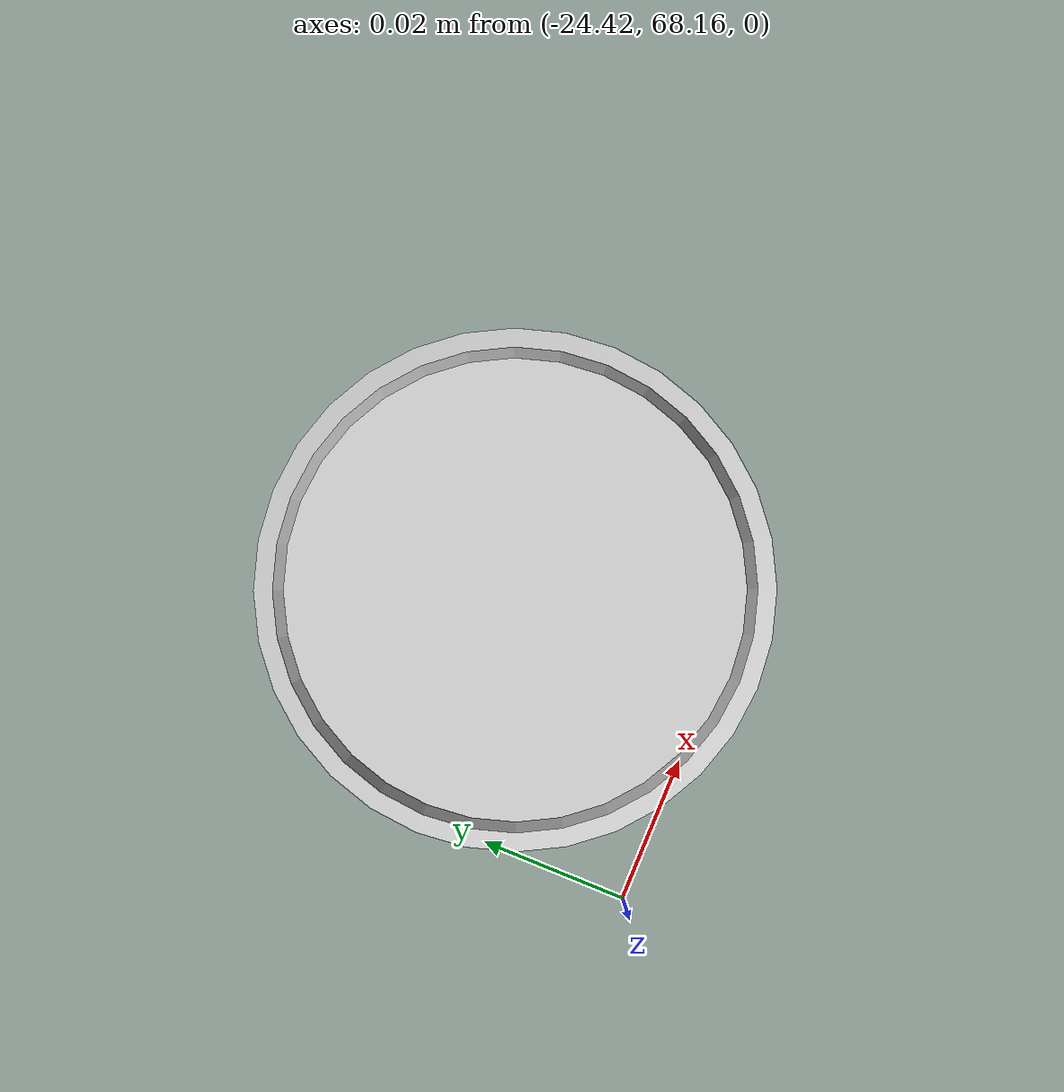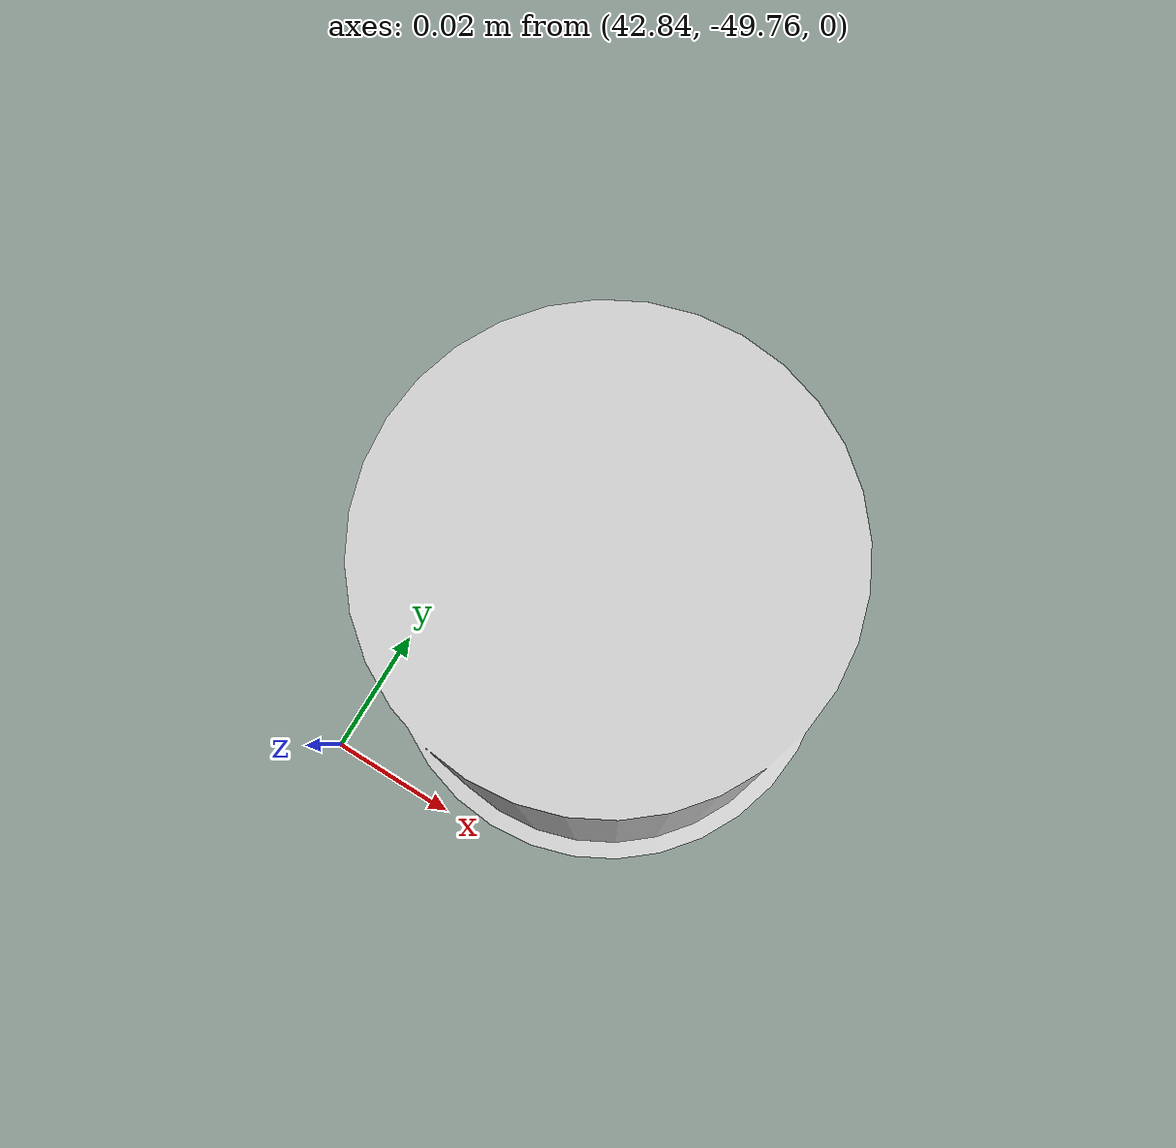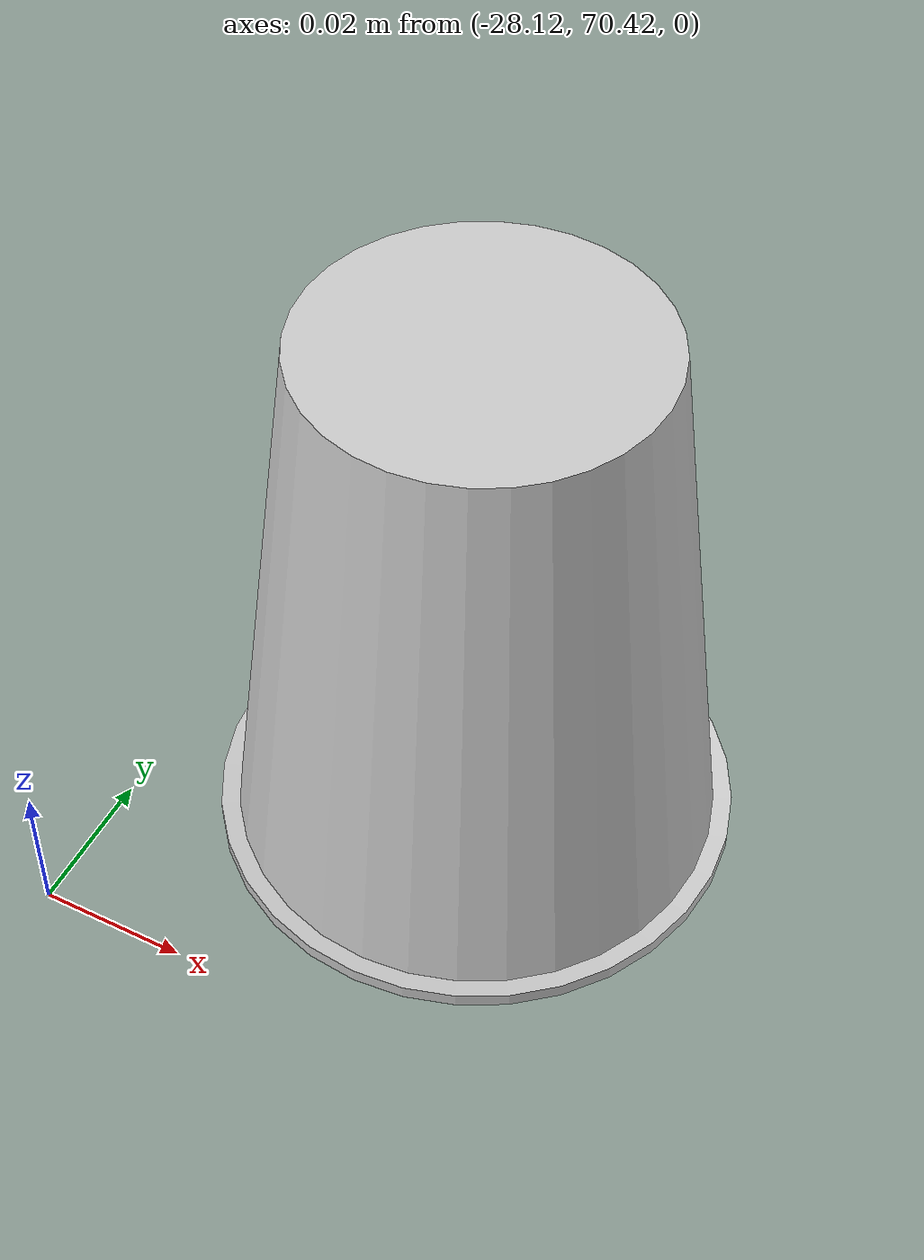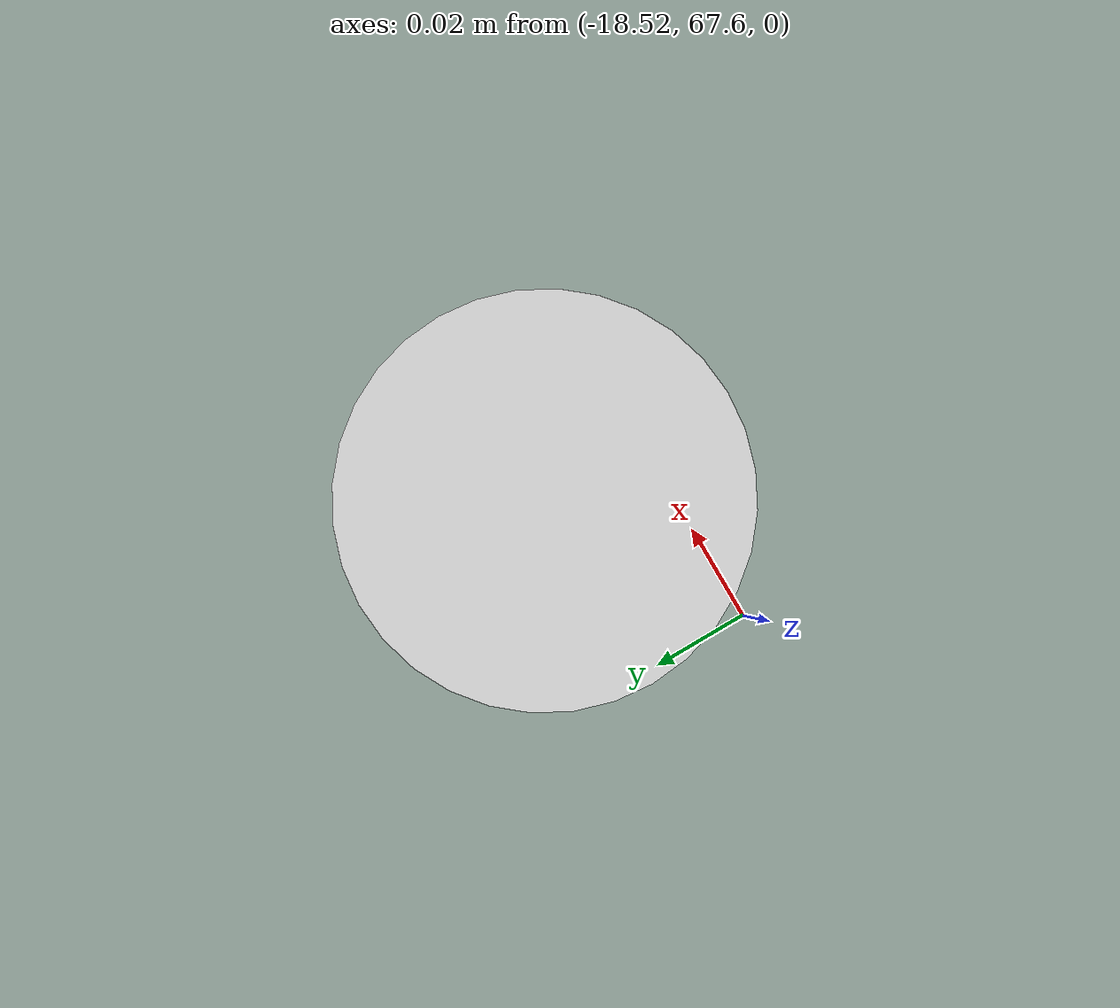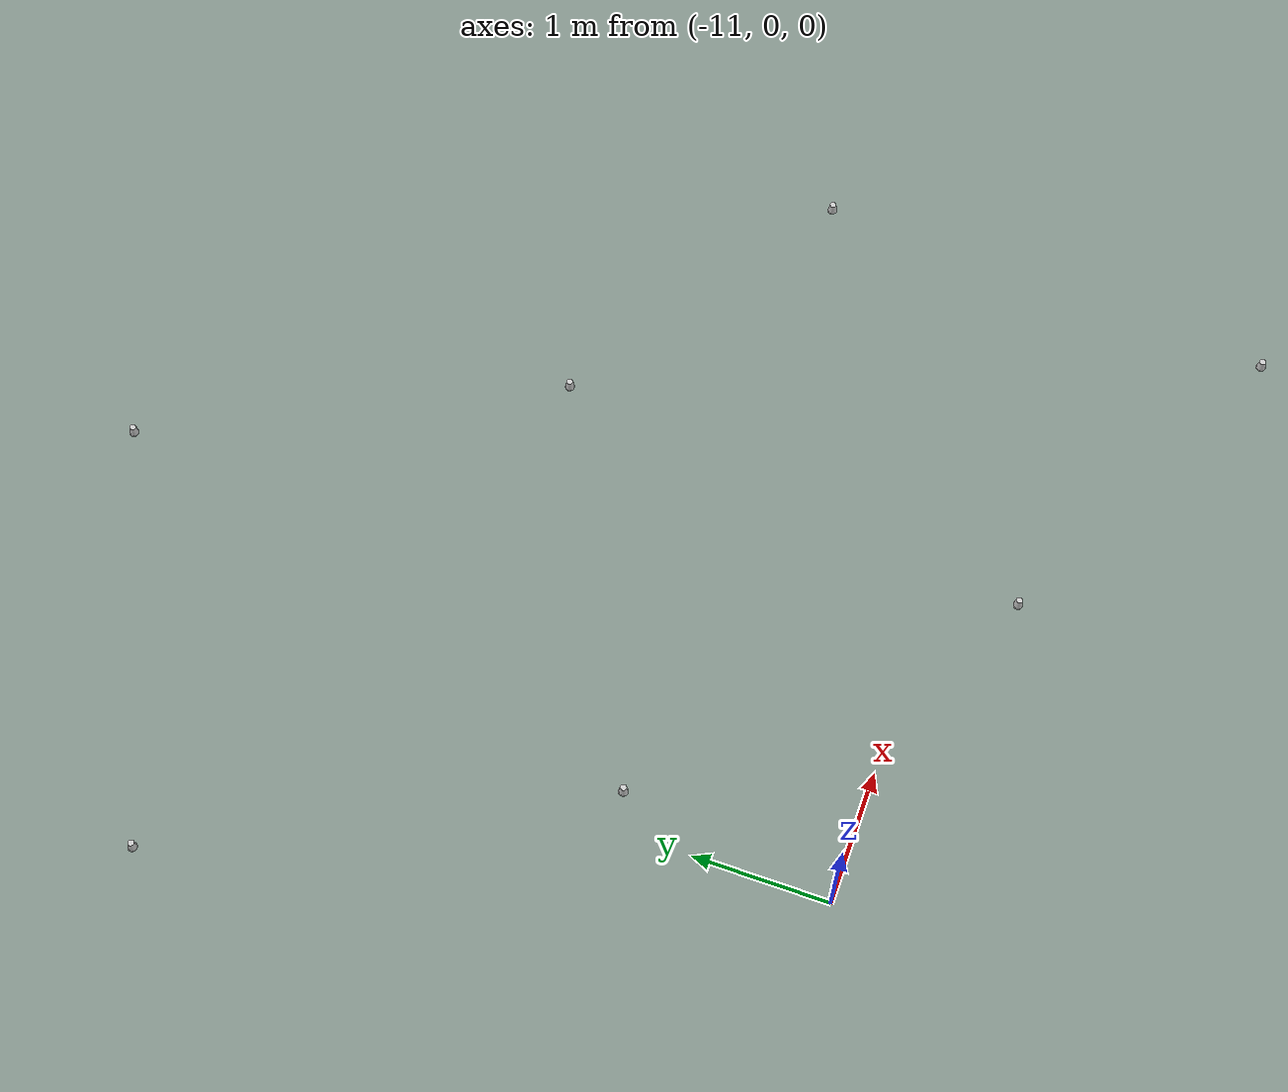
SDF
<?xml version='1.0' encoding='UTF-8'?>
<sdf version="1.4">
  <model name="some track">
    <include>
      <uri>model://cone_yellow</uri>
      <pose>3.3622384025859 -1.5132074425365554 0 0 0 0</pose>
      <name>cone_right</name>
    </include>
    <include>
      <uri>model://cone_yellow</uri>
      <pose>6.259250597664582 -2.1532482217214026 0 0 0 0</pose>
      <name>cone_right</name>
    </include>
    <include>
      <uri>model://cone_yellow</uri>
      <pose>8.647164237749518 -3.622865773240207 0 0 0 0</pose>
      <name>cone_right</name>
    </include>
    <include>
      <uri>model://cone_yellow</uri>
      <pose>10.292037603150265 -5.812961890619617 0 0 0 0</pose>
      <name>cone_right</name>
    </include>
    <include>
      <uri>model://cone_yellow</uri>
      <pose>11.259022733309902 -8.471162597410538 0 0 0 0</pose>
      <name>cone_right</name>
    </include>
    <include>
      <uri>model://cone_yellow</uri>
      <pose>12.039526715535647 -11.528677810046746 0 0 0 0</pose>
      <name>cone_right</name>
    </include>
    <include>
      <uri>model://cone_yellow</uri>
      <pose>13.237308390396118 -14.78168593250153 0 0 0 0</pose>
      <name>cone_right</name>
    </include>
    <include>
      <uri>model://cone_yellow</uri>
      <pose>15.469694142120082 -17.858044309962725 0 0 0 0</pose>
      <name>cone_right</name>
    </include>
    <include>
      <uri>model://cone_yellow</uri>
      <pose>18.478466811821782 -20.160987081926084 0 0 0 0</pose>
      <name>cone_right</name>
    </include>
    <include>
      <uri>model://cone_yellow</uri>
      <pose>21.44662354575577 -21.959542022923166 0 0 0 0</pose>
      <name>cone_right</name>
    </include>
    <include>
      <uri>model://cone_yellow</uri>
      <pose>23.615674799504887 -24.042856306092137 0 0 0 0</pose>
      <name>cone_right</name>
    </include>
    <include>
      <uri>model://cone_yellow</uri>
      <pose>25.02768524735859 -26.543339647057486 0 0 0 0</pose>
      <name>cone_right</name>
    </include>
    <include>
      <uri>model://cone_yellow</uri>
      <pose>25.738297767753505 -29.35910991662206 0 0 0 0</pose>
      <name>cone_right</name>
    </include>
    <include>
      <uri>model://cone_yellow</uri>
      <pose>26.010932183008247 -32.39570680692608 0 0 0 0</pose>
      <name>cone_right</name>
    </include>
    <include>
      <uri>model://cone_yellow</uri>
      <pose>26.110958581319657 -35.598014532142685 0 0 0 0</pose>
      <name>cone_right</name>
    </include>
    <include>
      <uri>model://cone_yellow</uri>
      <pose>26.396331250662115 -39.04045762697147 0 0 0 0</pose>
      <name>cone_right</name>
    </include>
    <include>
      <uri>model://cone_yellow</uri>
      <pose>27.214775026081707 -42.5556245915364 0 0 0 0</pose>
      <name>cone_right</name>
    </include>
    <include>
      <uri>model://cone_yellow</uri>
      <pose>28.91944271463657 -45.85485545053161 0 0 0 0</pose>
      <name>cone_right</name>
    </include>
    <include>
      <uri>model://cone_yellow</uri>
      <pose>31.689100223815803 -48.55489649330053 0 0 0 0</pose>
      <name>cone_right</name>
    </include>
    <include>
      <uri>model://cone_yellow</uri>
      <pose>35.168347937387104 -50.25675119563339 0 0 0 0</pose>
      <name>cone_right</name>
    </include>
    <include>
      <uri>model://cone_yellow</uri>
      <pose>39.0183194124379 -50.72897628823628 0 0 0 0</pose>
      <name>cone_right</name>
    </include>
    <include>
      <uri>model://cone_yellow</uri>
      <pose>42.86729069564972 -49.72292342025071 0 0 0 0</pose>
      <name>cone_right</name>
    </include>
    <include>
      <uri>model://cone_yellow</uri>
      <pose>46.02132421499899 -47.324481677397735 0 0 0 0</pose>
      <name>cone_right</name>
    </include>
    <include>
      <uri>model://cone_yellow</uri>
      <pose>47.97121924507955 -43.88973676657605 0 0 0 0</pose>
      <name>cone_right</name>
    </include>
    <include>
      <uri>model://cone_yellow</uri>
      <pose>48.89364683701833 -40.199833036367146 0 0 0 0</pose>
      <name>cone_right</name>
    </include>
    <include>
      <uri>model://cone_yellow</uri>
      <pose>49.30471824391967 -36.69611960060458 0 0 0 0</pose>
      <name>cone_right</name>
    </include>
    <include>
      <uri>model://cone_yellow</uri>
      <pose>49.35455220864314 -33.22598747523137 0 0 0 0</pose>
      <name>cone_right</name>
    </include>
    <include>
      <uri>model://cone_yellow</uri>
      <pose>49.000485433380305 -29.71099484779388 0 0 0 0</pose>
      <name>cone_right</name>
    </include>
    <include>
      <uri>model://cone_yellow</uri>
      <pose>47.856703925873894 -26.219419465615598 0 0 0 0</pose>
      <name>cone_right</name>
    </include>
    <include>
      <uri>model://cone_yellow</uri>
      <pose>45.556977241196144 -23.097542280730796 0 0 0 0</pose>
      <name>cone_right</name>
    </include>
    <include>
      <uri>model://cone_yellow</uri>
      <pose>42.47639430160405 -20.821973684526835 0 0 0 0</pose>
      <name>cone_right</name>
    </include>
    <include>
      <uri>model://cone_yellow</uri>
      <pose>39.057238338443824 -19.41061482996617 0 0 0 0</pose>
      <name>cone_right</name>
    </include>
    <include>
      <uri>model://cone_yellow</uri>
      <pose>35.756141015721866 -18.370227167060534 0 0 0 0</pose>
      <name>cone_right</name>
    </include>
    <include>
      <uri>model://cone_yellow</uri>
      <pose>32.89210592125593 -17.11120940131093 0 0 0 0</pose>
      <name>cone_right</name>
    </include>
    <include>
      <uri>model://cone_yellow</uri>
      <pose>30.44830629390956 -15.376089345329568 0 0 0 0</pose>
      <name>cone_right</name>
    </include>
    <include>
      <uri>model://cone_yellow</uri>
      <pose>27.772197206819527 -13.446500464478701 0 0 0 0</pose>
      <name>cone_right</name>
    </include>
    <include>
      <uri>model://cone_yellow</uri>
      <pose>24.984858975055747 -11.561737595805646 0 0 0 0</pose>
      <name>cone_right</name>
    </include>
    <include>
      <uri>model://cone_yellow</uri>
      <pose>22.658284238531103 -9.49426391543626 0 0 0 0</pose>
      <name>cone_right</name>
    </include>
    <include>
      <uri>model://cone_yellow</uri>
      <pose>20.895628540062223 -7.083613817129443 0 0 0 0</pose>
      <name>cone_right</name>
    </include>
    <include>
      <uri>model://cone_yellow</uri>
      <pose>19.51449016129218 -4.348439999004061 0 0 0 0</pose>
      <name>cone_right</name>
    </include>
    <include>
      <uri>model://cone_yellow</uri>
      <pose>18.394409241640528 -1.4248643136592714 0 0 0 0</pose>
      <name>cone_right</name>
    </include>
    <include>
      <uri>model://cone_yellow</uri>
      <pose>17.51350906490978 1.6256945100738485 0 0 0 0</pose>
      <name>cone_right</name>
    </include>
    <include>
      <uri>model://cone_yellow</uri>
      <pose>16.81545647996961 4.841490917194193 0 0 0 0</pose>
      <name>cone_right</name>
    </include>
    <include>
      <uri>model://cone_yellow</uri>
      <pose>15.86375825838629 8.166313627358802 0 0 0 0</pose>
      <name>cone_right</name>
    </include>
    <include>
      <uri>model://cone_yellow</uri>
      <pose>10.600337189464106 13.56887888771917 0 0 0 0</pose>
      <name>cone_right</name>
    </include>
    <include>
      <uri>model://cone_yellow</uri>
      <pose>7.032211498434359 14.95143794806469 0 0 0 0</pose>
      <name>cone_right</name>
    </include>
    <include>
      <uri>model://cone_yellow</uri>
      <pose>3.5390231181158427 15.71886155560296 0 0 0 0</pose>
      <name>cone_right</name>
    </include>
    <include>
      <uri>model://cone_yellow</uri>
      <pose>0.06735392538790623 16.04662453158276 0 0 0 0</pose>
      <name>cone_right</name>
    </include>
    <include>
      <uri>model://cone_yellow</uri>
      <pose>-3.3387380073609365 16.169138480514352 0 0 0 0</pose>
      <name>cone_right</name>
    </include>
    <include>
      <uri>model://cone_yellow</uri>
      <pose>-6.489748937029006 16.571151393596477 0 0 0 0</pose>
      <name>cone_right</name>
    </include>
    <include>
      <uri>model://cone_yellow</uri>
      <pose>-9.301134813587538 17.6028480861761 0 0 0 0</pose>
      <name>cone_right</name>
    </include>
    <include>
      <uri>model://cone_yellow</uri>
      <pose>-11.652063725274067 19.398773907626992 0 0 0 0</pose>
      <name>cone_right</name>
    </include>
    <include>
      <uri>model://cone_yellow</uri>
      <pose>-13.190582215300047 21.74615433746484 0 0 0 0</pose>
      <name>cone_right</name>
    </include>
    <include>
      <uri>model://cone_yellow</uri>
      <pose>-13.672558157100381 24.361726381123507 0 0 0 0</pose>
      <name>cone_right</name>
    </include>
    <include>
      <uri>model://cone_yellow</uri>
      <pose>-13.775586413715082 27.44689955864186 0 0 0 0</pose>
      <name>cone_right</name>
    </include>
    <include>
      <uri>model://cone_yellow</uri>
      <pose>-13.97752302505224 30.841168514625277 0 0 0 0</pose>
      <name>cone_right</name>
    </include>
    <include>
      <uri>model://cone_yellow</uri>
      <pose>-14.01997881656977 34.066368930707924 0 0 0 0</pose>
      <name>cone_right</name>
    </include>
    <include>
      <uri>model://cone_yellow</uri>
      <pose>-13.520623555645358 37.009068722358215 0 0 0 0</pose>
      <name>cone_right</name>
    </include>
    <include>
      <uri>model://cone_yellow</uri>
      <pose>-12.503711025104177 39.88910522184116 0 0 0 0</pose>
      <name>cone_right</name>
    </include>
    <include>
      <uri>model://cone_yellow</uri>
      <pose>-11.247183493568029 42.88076941030616 0 0 0 0</pose>
      <name>cone_right</name>
    </include>
    <include>
      <uri>model://cone_yellow</uri>
      <pose>-9.985531016541035 45.96125798477672 0 0 0 0</pose>
      <name>cone_right</name>
    </include>
    <include>
      <uri>model://cone_yellow</uri>
      <pose>-8.840750235903718 49.143066309419595 0 0 0 0</pose>
      <name>cone_right</name>
    </include>
    <include>
      <uri>model://cone_yellow</uri>
      <pose>-7.933595363653804 52.484039684658406 0 0 0 0</pose>
      <name>cone_right</name>
    </include>
    <include>
      <uri>model://cone_yellow</uri>
      <pose>-7.472469614740918 56.00738966560034 0 0 0 0</pose>
      <name>cone_right</name>
    </include>
    <include>
      <uri>model://cone_yellow</uri>
      <pose>-7.707498163434575 59.68809022912594 0 0 0 0</pose>
      <name>cone_right</name>
    </include>
    <include>
      <uri>model://cone_yellow</uri>
      <pose>-8.7963066570658 63.28929379975951 0 0 0 0</pose>
      <name>cone_right</name>
    </include>
    <include>
      <uri>model://cone_yellow</uri>
      <pose>-10.805227133688144 66.47619942409686 0 0 0 0</pose>
      <name>cone_right</name>
    </include>
    <include>
      <uri>model://cone_yellow</uri>
      <pose>-13.71487251309787 68.94759307421472 0 0 0 0</pose>
      <name>cone_right</name>
    </include>
    <include>
      <uri>model://cone_yellow</uri>
      <pose>-17.12364269594156 70.57701022400796 0 0 0 0</pose>
      <name>cone_right</name>
    </include>
    <include>
      <uri>model://cone_yellow</uri>
      <pose>-20.713244595924337 71.42945408777881 0 0 0 0</pose>
      <name>cone_right</name>
    </include>
    <include>
      <uri>model://cone_yellow</uri>
      <pose>-24.41718637158855 71.4389720314702 0 0 0 0</pose>
      <name>cone_right</name>
    </include>
    <include>
      <uri>model://cone_yellow</uri>
      <pose>-28.077720673551866 70.46198934781054 0 0 0 0</pose>
      <name>cone_right</name>
    </include>
    <include>
      <uri>model://cone_yellow</uri>
      <pose>-31.31522551014879 68.45849708095577 0 0 0 0</pose>
      <name>cone_right</name>
    </include>
    <include>
      <uri>model://cone_yellow</uri>
      <pose>-33.781877207946295 65.5051184189308 0 0 0 0</pose>
      <name>cone_right</name>
    </include>
    <include>
      <uri>model://cone_yellow</uri>
      <pose>-35.363632749064884 62.05671840972439 0 0 0 0</pose>
      <name>cone_right</name>
    </include>
    <include>
      <uri>model://cone_yellow</uri>
      <pose>-36.174728246150465 58.47848237610591 0 0 0 0</pose>
      <name>cone_right</name>
    </include>
    <include>
      <uri>model://cone_yellow</uri>
      <pose>-36.27282627962357 54.83772238248714 0 0 0 0</pose>
      <name>cone_right</name>
    </include>
    <include>
      <uri>model://cone_yellow</uri>
      <pose>-35.640560733761674 51.20403641504244 0 0 0 0</pose>
      <name>cone_right</name>
    </include>
    <include>
      <uri>model://cone_yellow</uri>
      <pose>-34.18350962070657 47.79476881089 0 0 0 0</pose>
      <name>cone_right</name>
    </include>
    <include>
      <uri>model://cone_yellow</uri>
      <pose>-31.850397946625105 44.8744514030496 0 0 0 0</pose>
      <name>cone_right</name>
    </include>
    <include>
      <uri>model://cone_yellow</uri>
      <pose>-29.380889305628227 42.40542332825412 0 0 0 0</pose>
      <name>cone_right</name>
    </include>
    <include>
      <uri>model://cone_yellow</uri>
      <pose>-27.48931105256917 39.94337945696528 0 0 0 0</pose>
      <name>cone_right</name>
    </include>
    <include>
      <uri>model://cone_yellow</uri>
      <pose>-25.976989819498147 37.237669809606885 0 0 0 0</pose>
      <name>cone_right</name>
    </include>
    <include>
      <uri>model://cone_yellow</uri>
      <pose>-24.68594859792965 34.31816490505151 0 0 0 0</pose>
      <name>cone_right</name>
    </include>
    <include>
      <uri>model://cone_yellow</uri>
      <pose>-23.731979448347218 31.32048696920326 0 0 0 0</pose>
      <name>cone_right</name>
    </include>
    <include>
      <uri>model://cone_yellow</uri>
      <pose>-23.234546517448678 28.30962026830404 0 0 0 0</pose>
      <name>cone_right</name>
    </include>
    <include>
      <uri>model://cone_yellow</uri>
      <pose>-23.002557095766914 25.166103672426523 0 0 0 0</pose>
      <name>cone_right</name>
    </include>
    <include>
      <uri>model://cone_yellow</uri>
      <pose>-22.665907876363747 21.78039574482926 0 0 0 0</pose>
      <name>cone_right</name>
    </include>
    <include>
      <uri>model://cone_yellow</uri>
      <pose>-21.868134855880633 18.25262460072993 0 0 0 0</pose>
      <name>cone_right</name>
    </include>
    <include>
      <uri>model://cone_yellow</uri>
      <pose>-20.334038256388503 14.912566385034198 0 0 0 0</pose>
      <name>cone_right</name>
    </include>
    <include>
      <uri>model://cone_yellow</uri>
      <pose>-17.826953576286378 12.089190820506047 0 0 0 0</pose>
      <name>cone_right</name>
    </include>
    <include>
      <uri>model://cone_yellow</uri>
      <pose>-15.162596001065072 9.789017109934537 0 0 0 0</pose>
      <name>cone_right</name>
    </include>
    <include>
      <uri>model://cone_yellow</uri>
      <pose>-13.458822712983375 7.415565854776381 0 0 0 0</pose>
      <name>cone_right</name>
    </include>
    <include>
      <uri>model://cone_yellow</uri>
      <pose>-12.243618565709454 4.635472775655098 0 0 0 0</pose>
      <name>cone_right</name>
    </include>
    <include>
      <uri>model://cone_yellow</uri>
      <pose>-10.71662562829155 1.6027465864021502 0 0 0 0</pose>
      <name>cone_right</name>
    </include>
    <include>
      <uri>model://cone_yellow</uri>
      <pose>13.81272622916488 11.409046766493056 0 0 0 0</pose>
      <name>cone_right</name>
    </include>
    <include>
      <uri>model://cone_yellow</uri>
      <pose>-3.1659267008400533 -1.7666543914025397 0 0 0 0</pose>
      <name>cone_right</name>
    </include>
    <include>
      <uri>model://cone_yellow</uri>
      <pose>-8.41012653588632 -0.5837521729710531 0 0 0 0</pose>
      <name>cone_right</name>
    </include>
    <include>
      <uri>model://cone_yellow</uri>
      <pose>-5.88660180323248 -1.7666543914025397 0 0 0 0</pose>
      <name>cone_right</name>
    </include>
    <include>
      <uri>model://cone_blue</uri>
      <pose>3.2533566230468307 1.7349681620273985 0 0 0 0</pose>
      <name>cone_left</name>
    </include>
    <include>
      <uri>model://cone_blue</uri>
      <pose>6.912194672484337 1.0304860691951263 0 0 0 0</pose>
      <name>cone_left</name>
    </include>
    <include>
      <uri>model://cone_blue</uri>
      <pose>10.26842924042257 -0.8061301109695078 0 0 0 0</pose>
      <name>cone_left</name>
    </include>
    <include>
      <uri>model://cone_blue</uri>
      <pose>12.812367862044466 -3.7610273433929566 0 0 0 0</pose>
      <name>cone_left</name>
    </include>
    <include>
      <uri>model://cone_blue</uri>
      <pose>14.282173172481034 -7.278241216036481 0 0 0 0</pose>
      <name>cone_left</name>
    </include>
    <include>
      <uri>model://cone_blue</uri>
      <pose>15.18543985416387 -10.712754698346684 0 0 0 0</pose>
      <name>cone_left</name>
    </include>
    <include>
      <uri>model://cone_blue</uri>
      <pose>16.284419667046915 -13.651370548324374 0 0 0 0</pose>
      <name>cone_left</name>
    </include>
    <include>
      <uri>model://cone_blue</uri>
      <pose>18.065507131820993 -15.902474080464433 0 0 0 0</pose>
      <name>cone_left</name>
    </include>
    <include>
      <uri>model://cone_blue</uri>
      <pose>20.407375048132266 -17.545301126790495 0 0 0 0</pose>
      <name>cone_left</name>
    </include>
    <include>
      <uri>model://cone_blue</uri>
      <pose>23.125295768920424 -19.176637143633286 0 0 0 0</pose>
      <name>cone_left</name>
    </include>
    <include>
      <uri>model://cone_blue</uri>
      <pose>25.838855181858072 -21.6722089287878 0 0 0 0</pose>
      <name>cone_left</name>
    </include>
    <include>
      <uri>model://cone_blue</uri>
      <pose>27.82142851181967 -24.882767886404437 0 0 0 0</pose>
      <name>cone_left</name>
    </include>
    <include>
      <uri>model://cone_blue</uri>
      <pose>28.87286043534073 -28.500613042446936 0 0 0 0</pose>
      <name>cone_left</name>
    </include>
    <include>
      <uri>model://cone_blue</uri>
      <pose>29.24558069529353 -32.08019293722996 0 0 0 0</pose>
      <name>cone_left</name>
    </include>
    <include>
      <uri>model://cone_blue</uri>
      <pose>29.35926394231648 -35.493075112860495 0 0 0 0</pose>
      <name>cone_left</name>
    </include>
    <include>
      <uri>model://cone_blue</uri>
      <pose>29.635056260674354 -38.76997600186319 0 0 0 0</pose>
      <name>cone_left</name>
    </include>
    <include>
      <uri>model://cone_blue</uri>
      <pose>30.376316495723035 -41.80252729653519 0 0 0 0</pose>
      <name>cone_left</name>
    </include>
    <include>
      <uri>model://cone_blue</uri>
      <pose>31.784982249486976 -44.32149861854196 0 0 0 0</pose>
      <name>cone_left</name>
    </include>
    <include>
      <uri>model://cone_blue</uri>
      <pose>33.90462940084386 -46.17709699255674 0 0 0 0</pose>
      <name>cone_left</name>
    </include>
    <include>
      <uri>model://cone_blue</uri>
      <pose>36.53545567378678 -47.30827422657358 0 0 0 0</pose>
      <name>cone_left</name>
    </include>
    <include>
      <uri>model://cone_blue</uri>
      <pose>39.33854686236939 -47.494791015202225 0 0 0 0</pose>
      <name>cone_left</name>
    </include>
    <include>
      <uri>model://cone_blue</uri>
      <pose>41.95217814212196 -46.604419129027775 0 0 0 0</pose>
      <name>cone_left</name>
    </include>
    <include>
      <uri>model://cone_blue</uri>
      <pose>43.97275746421602 -44.80141325430919 0 0 0 0</pose>
      <name>cone_left</name>
    </include>
    <include>
      <uri>model://cone_blue</uri>
      <pose>45.09283087617224 -42.380637565814496 0 0 0 0</pose>
      <name>cone_left</name>
    </include>
    <include>
      <uri>model://cone_blue</uri>
      <pose>45.73037682630787 -39.45402955062857 0 0 0 0</pose>
      <name>cone_left</name>
    </include>
    <include>
      <uri>model://cone_blue</uri>
      <pose>46.07566257354333 -36.32774550052367 0 0 0 0</pose>
      <name>cone_left</name>
    </include>
    <include>
      <uri>model://cone_blue</uri>
      <pose>46.10478398809592 -33.18717365396483 0 0 0 0</pose>
      <name>cone_left</name>
    </include>
    <include>
      <uri>model://cone_blue</uri>
      <pose>45.76786082179848 -30.046610879287424 0 0 0 0</pose>
      <name>cone_left</name>
    </include>
    <include>
      <uri>model://cone_blue</uri>
      <pose>44.77958362706085 -27.265283064099027 0 0 0 0</pose>
      <name>cone_left</name>
    </include>
    <include>
      <uri>model://cone_blue</uri>
      <pose>42.98452424263521 -25.08374105482036 0 0 0 0</pose>
      <name>cone_left</name>
    </include>
    <include>
      <uri>model://cone_blue</uri>
      <pose>40.59377372827446 -23.47116974689673 0 0 0 0</pose>
      <name>cone_left</name>
    </include>
    <include>
      <uri>model://cone_blue</uri>
      <pose>37.85474933958962 -22.429972411908828 0 0 0 0</pose>
      <name>cone_left</name>
    </include>
    <include>
      <uri>model://cone_blue</uri>
      <pose>34.78332031335316 -21.471214087549377 0 0 0 0</pose>
      <name>cone_left</name>
    </include>
    <include>
      <uri>model://cone_blue</uri>
      <pose>31.59308935674801 -20.090312616228807 0 0 0 0</pose>
      <name>cone_left</name>
    </include>
    <include>
      <uri>model://cone_blue</uri>
      <pose>28.594365067160304 -18.04543419524302 0 0 0 0</pose>
      <name>cone_left</name>
    </include>
    <include>
      <uri>model://cone_blue</uri>
      <pose>25.871597845950227 -16.082827847309446 0 0 0 0</pose>
      <name>cone_left</name>
    </include>
    <include>
      <uri>model://cone_blue</uri>
      <pose>23.16497316911352 -14.25441575208983 0 0 0 0</pose>
      <name>cone_left</name>
    </include>
    <include>
      <uri>model://cone_blue</uri>
      <pose>20.509826105938345 -11.932834737146393 0 0 0 0</pose>
      <name>cone_left</name>
    </include>
    <include>
      <uri>model://cone_blue</uri>
      <pose>18.29432424326585 -9.031873541978452 0 0 0 0</pose>
      <name>cone_left</name>
    </include>
    <include>
      <uri>model://cone_blue</uri>
      <pose>16.624363967063424 -5.8349360741528695 0 0 0 0</pose>
      <name>cone_left</name>
    </include>
    <include>
      <uri>model://cone_blue</uri>
      <pose>15.362934678753003 -2.596470892065992 0 0 0 0</pose>
      <name>cone_left</name>
    </include>
    <include>
      <uri>model://cone_blue</uri>
      <pose>14.392789190833772 0.718166291478399 0 0 0 0</pose>
      <name>cone_left</name>
    </include>
    <include>
      <uri>model://cone_blue</uri>
      <pose>13.640212835865782 4.148434064852147 0 0 0 0</pose>
      <name>cone_left</name>
    </include>
    <include>
      <uri>model://cone_blue</uri>
      <pose>12.740125522250828 7.268862497913376 0 0 0 0</pose>
      <name>cone_left</name>
    </include>
    <include>
      <uri>model://cone_blue</uri>
      <pose>8.797924732232005 10.864473346012355 0 0 0 0</pose>
      <name>cone_left</name>
    </include>
    <include>
      <uri>model://cone_blue</uri>
      <pose>5.8917474805727 11.90811052171654 0 0 0 0</pose>
      <name>cone_left</name>
    </include>
    <include>
      <uri>model://cone_blue</uri>
      <pose>2.857262709695684 12.541173284939713 0 0 0 0</pose>
      <name>cone_left</name>
    </include>
    <include>
      <uri>model://cone_blue</uri>
      <pose>-0.22717013714847684 12.809997340109039 0 0 0 0</pose>
      <name>cone_left</name>
    </include>
    <include>
      <uri>model://cone_blue</uri>
      <pose>-3.453175126481573 12.92115385219984 0 0 0 0</pose>
      <name>cone_left</name>
    </include>
    <include>
      <uri>model://cone_blue</uri>
      <pose>-6.894436996779797 13.346445581542433 0 0 0 0</pose>
      <name>cone_left</name>
    </include>
    <include>
      <uri>model://cone_blue</uri>
      <pose>-10.382774137686617 14.538120305024487 0 0 0 0</pose>
      <name>cone_left</name>
    </include>
    <include>
      <uri>model://cone_blue</uri>
      <pose>-13.565198251332761 16.77152890854484 0 0 0 0</pose>
      <name>cone_left</name>
    </include>
    <include>
      <uri>model://cone_blue</uri>
      <pose>-15.85179577376747 19.88055995597964 0 0 0 0</pose>
      <name>cone_left</name>
    </include>
    <include>
      <uri>model://cone_blue</uri>
      <pose>-16.839280983650372 23.6307225919355 0 0 0 0</pose>
      <name>cone_left</name>
    </include>
    <include>
      <uri>model://cone_blue</uri>
      <pose>-17.02267636808562 27.309397456018132 0 0 0 0</pose>
      <name>cone_left</name>
    </include>
    <include>
      <uri>model://cone_blue</uri>
      <pose>-17.22177300877361 30.647927620599436 0 0 0 0</pose>
      <name>cone_left</name>
    </include>
    <include>
      <uri>model://cone_blue</uri>
      <pose>-17.269674209247274 34.02187337125967 0 0 0 0</pose>
      <name>cone_left</name>
    </include>
    <include>
      <uri>model://cone_blue</uri>
      <pose>-16.72915962662823 37.526559090579504 0 0 0 0</pose>
      <name>cone_left</name>
    </include>
    <include>
      <uri>model://cone_blue</uri>
      <pose>-15.576657212311954 40.947170309879326 0 0 0 0</pose>
      <name>cone_left</name>
    </include>
    <include>
      <uri>model://cone_blue</uri>
      <pose>-14.244943475142682 44.13613194474374 0 0 0 0</pose>
      <name>cone_left</name>
    </include>
    <include>
      <uri>model://cone_blue</uri>
      <pose>-12.99308001008303 47.192984030390974 0 0 0 0</pose>
      <name>cone_left</name>
    </include>
    <include>
      <uri>model://cone_blue</uri>
      <pose>-11.899346319523977 50.24192480679895 0 0 0 0</pose>
      <name>cone_left</name>
    </include>
    <include>
      <uri>model://cone_blue</uri>
      <pose>-11.071351213258293 53.33079125877729 0 0 0 0</pose>
      <name>cone_left</name>
    </include>
    <include>
      <uri>model://cone_blue</uri>
      <pose>-10.696785275934483 56.41517455617614 0 0 0 0</pose>
      <name>cone_left</name>
    </include>
    <include>
      <uri>model://cone_blue</uri>
      <pose>-10.948985602518555 59.45301751216204 0 0 0 0</pose>
      <name>cone_left</name>
    </include>
    <include>
      <uri>model://cone_blue</uri>
      <pose>-11.896048962665168 62.31251458270095 0 0 0 0</pose>
      <name>cone_left</name>
    </include>
    <include>
      <uri>model://cone_blue</uri>
      <pose>-13.526496251418079 64.69934985565014 0 0 0 0</pose>
      <name>cone_left</name>
    </include>
    <include>
      <uri>model://cone_blue</uri>
      <pose>-15.768704460754996 66.42880877801488 0 0 0 0</pose>
      <name>cone_left</name>
    </include>
    <include>
      <uri>model://cone_blue</uri>
      <pose>-18.485394585403125 67.62605583744964 0 0 0 0</pose>
      <name>cone_left</name>
    </include>
    <include>
      <uri>model://cone_blue</uri>
      <pose>-21.433888717962482 68.26035767880482 0 0 0 0</pose>
      <name>cone_left</name>
    </include>
    <include>
      <uri>model://cone_blue</uri>
      <pose>-24.387052047235933 68.18911173870441 0 0 0 0</pose>
      <name>cone_left</name>
    </include>
    <include>
      <uri>model://cone_blue</uri>
      <pose>-27.192121543546477 67.33497572760777 0 0 0 0</pose>
      <name>cone_left</name>
    </include>
    <include>
      <uri>model://cone_blue</uri>
      <pose>-29.553701466495202 65.7272825079809 0 0 0 0</pose>
      <name>cone_left</name>
    </include>
    <include>
      <uri>model://cone_blue</uri>
      <pose>-31.242236662354617 63.47713274363948 0 0 0 0</pose>
      <name>cone_left</name>
    </include>
    <include>
      <uri>model://cone_blue</uri>
      <pose>-32.39066764171128 60.74371480330971 0 0 0 0</pose>
      <name>cone_left</name>
    </include>
    <include>
      <uri>model://cone_blue</uri>
      <pose>-32.99879688623683 57.78858383492962 0 0 0 0</pose>
      <name>cone_left</name>
    </include>
    <include>
      <uri>model://cone_blue</uri>
      <pose>-33.0233789222854 54.77779015502991 0 0 0 0</pose>
      <name>cone_left</name>
    </include>
    <include>
      <uri>model://cone_blue</uri>
      <pose>-32.443658588846816 51.789114765213384 0 0 0 0</pose>
      <name>cone_left</name>
    </include>
    <include>
      <uri>model://cone_blue</uri>
      <pose>-31.21059150401848 49.10787881064925 0 0 0 0</pose>
      <name>cone_left</name>
    </include>
    <include>
      <uri>model://cone_blue</uri>
      <pose>-29.344579593310367 46.944082863042176 0 0 0 0</pose>
      <name>cone_left</name>
    </include>
    <include>
      <uri>model://cone_blue</uri>
      <pose>-27.088084812889736 44.70880075240289 0 0 0 0</pose>
      <name>cone_left</name>
    </include>
    <include>
      <uri>model://cone_blue</uri>
      <pose>-24.920659350953066 41.93449181838155 0 0 0 0</pose>
      <name>cone_left</name>
    </include>
    <include>
      <uri>model://cone_blue</uri>
      <pose>-23.148740336598518 38.83876470450787 0 0 0 0</pose>
      <name>cone_left</name>
    </include>
    <include>
      <uri>model://cone_blue</uri>
      <pose>-21.716719037996025 35.63959436605818 0 0 0 0</pose>
      <name>cone_left</name>
    </include>
    <include>
      <uri>model://cone_blue</uri>
      <pose>-20.63797902753125 32.3153042368412 0 0 0 0</pose>
      <name>cone_left</name>
    </include>
    <include>
      <uri>model://cone_blue</uri>
      <pose>-20.030898629717377 28.856557386659322 0 0 0 0</pose>
      <name>cone_left</name>
    </include>
    <include>
      <uri>model://cone_blue</uri>
      <pose>-19.761914592312532 25.412550755600392 0 0 0 0</pose>
      <name>cone_left</name>
    </include>
    <include>
      <uri>model://cone_blue</uri>
      <pose>-19.431897622476733 22.1023859275269 0 0 0 0</pose>
      <name>cone_left</name>
    </include>
    <include>
      <uri>model://cone_blue</uri>
      <pose>-18.700784520461262 18.980904665484424 0 0 0 0</pose>
      <name>cone_left</name>
    </include>
    <include>
      <uri>model://cone_blue</uri>
      <pose>-17.39458536507611 16.298970618926756 0 0 0 0</pose>
      <name>cone_left</name>
    </include>
    <include>
      <uri>model://cone_blue</uri>
      <pose>-15.440204020610325 14.295075350231066 0 0 0 0</pose>
      <name>cone_left</name>
    </include>
    <include>
      <uri>model://cone_blue</uri>
      <pose>-13.04638720149643 12.255626182452563 0 0 0 0</pose>
      <name>cone_left</name>
    </include>
    <include>
      <uri>model://cone_blue</uri>
      <pose>-10.84549033017557 9.347661571082403 0 0 0 0</pose>
      <name>cone_left</name>
    </include>
    <include>
      <uri>model://cone_blue</uri>
      <pose>-9.281577882969206 5.972938660749626 0 0 0 0</pose>
      <name>cone_left</name>
    </include>
    <include>
      <uri>model://cone_blue</uri>
      <pose>-7.814457949610992 3.0655940715563257 0 0 0 0</pose>
      <name>cone_left</name>
    </include>
    <include>
      <uri>model://cone_blue</uri>
      <pose>-5.642339608808302 1.6913572346472625 0 0 0 0</pose>
      <name>cone_left</name>
    </include>
    <include>
      <uri>model://cone_blue</uri>
      <pose>-3.0563641455644674 1.4523691786958561 0 0 0 0</pose>
      <name>cone_left</name>
    </include>
    <include>
      <uri>model://cone_blue</uri>
      <pose>10.814778846772118 9.174213263254813 0 0 0 0</pose>
      <name>cone_left</name>
    </include>
    <include>
      <uri>model://cone_orange_big</uri>
      <pose>-1.3 2.125 0 0 0 0</pose>
      <name>cone_orange_big</name>
    </include>
    <include>
      <uri>model://cone_orange_big</uri>
      <pose>-1.3 -2.125 0 0 0 0</pose>
      <name>cone_orange_big</name>
    </include>
    <include>
      <uri>model://cone_orange_big</uri>
      <pose>1.3 2.125 0 0 0 0</pose>
      <name>cone_orange_big</name>
    </include>
    <include>
      <uri>model://cone_orange_big</uri>
      <pose>1.3 -2.125 0 0 0 0</pose>
      <name>cone_orange_big</name>
    </include>
  </model>
</sdf>

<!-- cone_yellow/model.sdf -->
<sdf version='1.4'>
  <model name="cone_yellow">
    <link name="link">
    <collision name="collision"><geometry><box><size> 0.05 0.05 0.01</size>
             </box></geometry></collision>
      <visual name="visual">
        <geometry>
          <mesh>
            <uri>model://cup.dae</uri>
            <scale>1 1 1</scale>
          </mesh>
        </geometry>
        <material>
            <script>
              <uri>model://cone_yellow/materials/scripts</uri>
              <uri>model://cone_yellow/materials/textures</uri>
              <name>cone_yellow/Image</name>
            </script>
        </material>
      </visual>
    </link>
  </model>
</sdf>

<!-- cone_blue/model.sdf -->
<sdf version='1.4'>
  <model name="cone_blue">
    <link name="link">
    <collision name="collision"><geometry><box><size> 0.05 0.05 0.01</size>
             </box></geometry></collision>
      <visual name="visual">
        <geometry>
          <mesh>
            <uri>model://cup.dae</uri>
            <scale>1 1 1</scale>
          </mesh>
        </geometry>
        <material>
            <script>
              <uri>model://cone_blue/materials/scripts</uri>
              <uri>model://cone_blue/materials/textures</uri>
              <name>cone_blue/Image</name>
            </script>
        </material>
      </visual>
    </link>
  </model>
</sdf>

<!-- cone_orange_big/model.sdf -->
<sdf version='1.4'>
  <model name="cone_orange_big">
    <link name="link">
    <collision name="collision"><geometry><box><size> 0.05 0.05 0.01</size>
             </box></geometry></collision>
      <visual name="visual">
        <geometry>
          <mesh>
            <uri>model://cup.dae</uri>
            <scale>1 1 1</scale>
          </mesh>
        </geometry>
        <material>
            <script>
              <uri>model://cone_orange_big/materials/scripts</uri>
              <uri>model://cone_orange_big/materials/textures</uri>
              <name>cone_orange_big/Image</name>
            </script>
        </material>
      </visual>
    </link>
  </model>
</sdf>
